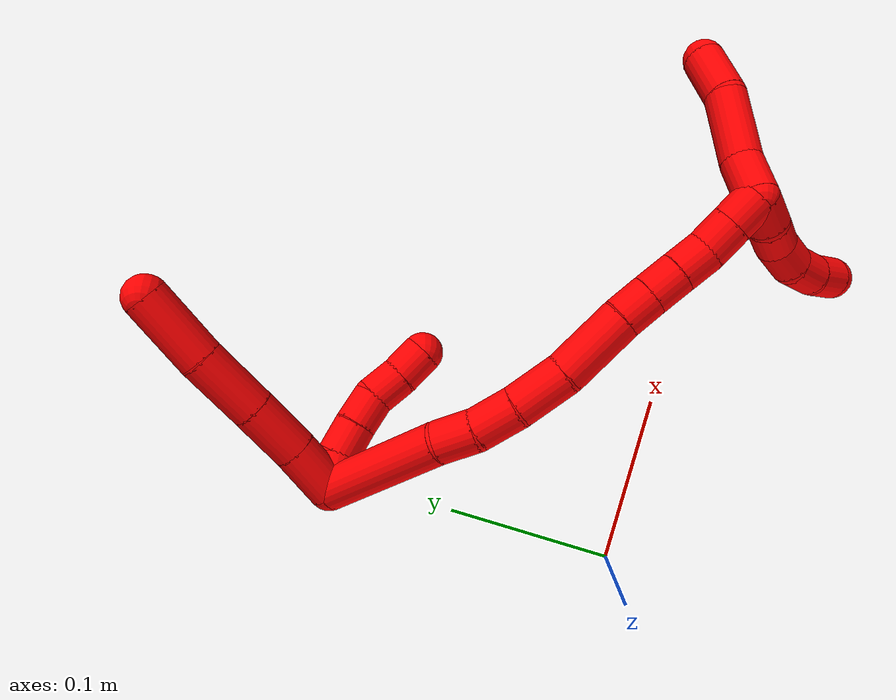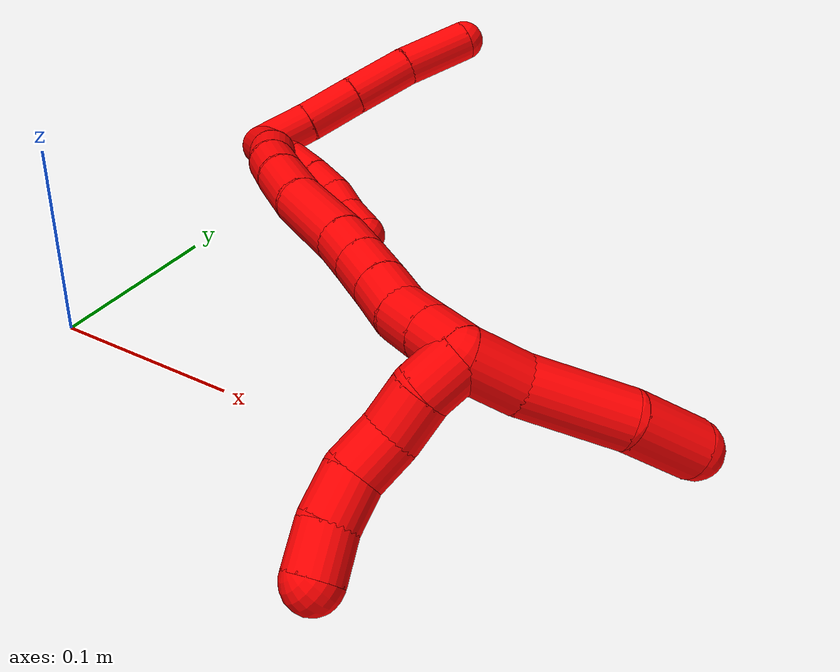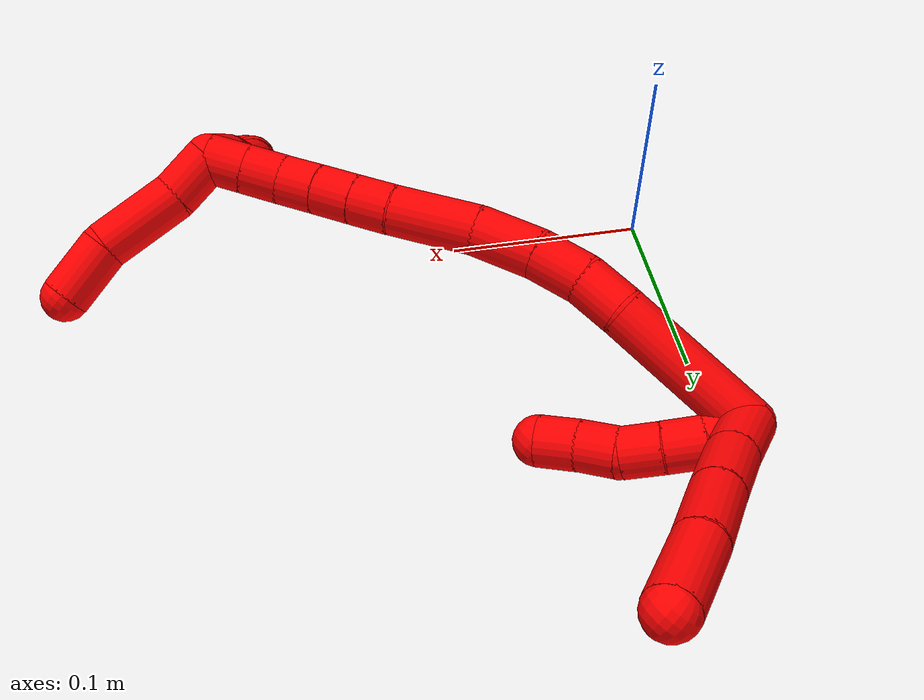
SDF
<sdf version="1.7">
 <world name="default">
  <model name="2">
   <static>0</static>
   <link name="2">
    <collision name="collision-cylinder-e_1_2_8">
     <pose>0.006403 0.013674 -0.005863 -1.97587 0.406387 -0.605814</pose>
     <geometry><cylinder><radius>0.0125</radius><length>0.032394</length></cylinder></geometry>
     <surface>
      <friction><ode><mu>1.16</mu><mu2>1.16</mu2><slip1>0</slip1><slip2>0</slip2></ode></friction>
      <contact><ode><kp>1e+06</kp><kd>1</kd><max_vel>0</max_vel><min_depth>0.001</min_depth></ode></contact>
     </surface>
    </collision>
    <visual name="visual-cylinder-e_1_2_8">
     <pose>0.006403 0.013674 -0.005863 -1.97587 0.406387 -0.605814</pose>
     <geometry><cylinder><radius>0.0125</radius><length>0.032394</length></cylinder></geometry>
     <material><ambient>1 0 0 1</ambient></material>
    </visual>
    <collision name="collision-cylinder-e_2_8_9">
     <pose>0.019117 0.042192 -0.017105 -1.91841 0.380319 -0.535751</pose>
     <geometry><cylinder><radius>0.0125</radius><length>0.034006</length></cylinder></geometry>
     <surface>
      <friction><ode><mu>1.16</mu><mu2>1.16</mu2><slip1>0</slip1><slip2>0</slip2></ode></friction>
      <contact><ode><kp>1e+06</kp><kd>1</kd><max_vel>0</max_vel><min_depth>0.001</min_depth></ode></contact>
     </surface>
    </collision>
    <visual name="visual-cylinder-e_2_8_9">
     <pose>0.019117 0.042192 -0.017105 -1.91841 0.380319 -0.535751</pose>
     <geometry><cylinder><radius>0.0125</radius><length>0.034006</length></cylinder></geometry>
     <material><ambient>1 0 0 1</ambient></material>
    </visual>
    <collision name="collision-cylinder-e_3_9_10">
     <pose>0.032278 0.07453 -0.029032 -1.92903 0.351447 -0.501356</pose>
     <geometry><cylinder><radius>0.0125</radius><length>0.039792</length></cylinder></geometry>
     <surface>
      <friction><ode><mu>1.16</mu><mu2>1.16</mu2><slip1>0</slip1><slip2>0</slip2></ode></friction>
      <contact><ode><kp>1e+06</kp><kd>1</kd><max_vel>0</max_vel><min_depth>0.001</min_depth></ode></contact>
     </surface>
    </collision>
    <visual name="visual-cylinder-e_3_9_10">
     <pose>0.032278 0.07453 -0.029032 -1.92903 0.351447 -0.501356</pose>
     <geometry><cylinder><radius>0.0125</radius><length>0.039792</length></cylinder></geometry>
     <material><ambient>1 0 0 1</ambient></material>
    </visual>
    <collision name="collision-cylinder-e_4_10_6">
     <pose>0.046659 0.110473 -0.044674 -2.02866 0.351022 -0.555441</pose>
     <geometry><cylinder><radius>0.0125</radius><length>0.043807</length></cylinder></geometry>
     <surface>
      <friction><ode><mu>1.16</mu><mu2>1.16</mu2><slip1>0</slip1><slip2>0</slip2></ode></friction>
      <contact><ode><kp>1e+06</kp><kd>1</kd><max_vel>0</max_vel><min_depth>0.001</min_depth></ode></contact>
     </surface>
    </collision>
    <visual name="visual-cylinder-e_4_10_6">
     <pose>0.046659 0.110473 -0.044674 -2.02866 0.351022 -0.555441</pose>
     <geometry><cylinder><radius>0.0125</radius><length>0.043807</length></cylinder></geometry>
     <material><ambient>1 0 0 1</ambient></material>
    </visual>
    <collision name="collision-cylinder-e_1_2_11">
     <pose>0.004643 -5.4e-05 -0.008857 3.13545 0.482796 3.11666</pose>
     <geometry><cylinder><radius>0.0125</radius><length>0.02</length></cylinder></geometry>
     <surface>
      <friction><ode><mu>1.16</mu><mu2>1.16</mu2><slip1>0</slip1><slip2>0</slip2></ode></friction>
      <contact><ode><kp>1e+06</kp><kd>1</kd><max_vel>0</max_vel><min_depth>0.001</min_depth></ode></contact>
     </surface>
    </collision>
    <visual name="visual-cylinder-e_1_2_11">
     <pose>0.004643 -5.4e-05 -0.008857 3.13545 0.482796 3.11666</pose>
     <geometry><cylinder><radius>0.0125</radius><length>0.02</length></cylinder></geometry>
     <material><ambient>1 0 0 1</ambient></material>
    </visual>
    <collision name="collision-cylinder-e_2_11_12">
     <pose>0.015187 -0.002677 -0.025367 2.81786 0.63132 2.21428</pose>
     <geometry><cylinder><radius>0.0125</radius><length>0.02</length></cylinder></geometry>
     <surface>
      <friction><ode><mu>1.16</mu><mu2>1.16</mu2><slip1>0</slip1><slip2>0</slip2></ode></friction>
      <contact><ode><kp>1e+06</kp><kd>1</kd><max_vel>0</max_vel><min_depth>0.001</min_depth></ode></contact>
     </surface>
    </collision>
    <visual name="visual-cylinder-e_2_11_12">
     <pose>0.015187 -0.002677 -0.025367 2.81786 0.63132 2.21428</pose>
     <geometry><cylinder><radius>0.0125</radius><length>0.02</length></cylinder></geometry>
     <material><ambient>1 0 0 1</ambient></material>
    </visual>
    <collision name="collision-cylinder-e_3_12_13">
     <pose>0.026743 -0.008458 -0.040617 2.74147 0.600853 1.9825</pose>
     <geometry><cylinder><radius>0.0125</radius><length>0.02</length></cylinder></geometry>
     <surface>
      <friction><ode><mu>1.16</mu><mu2>1.16</mu2><slip1>0</slip1><slip2>0</slip2></ode></friction>
      <contact><ode><kp>1e+06</kp><kd>1</kd><max_vel>0</max_vel><min_depth>0.001</min_depth></ode></contact>
     </surface>
    </collision>
    <visual name="visual-cylinder-e_3_12_13">
     <pose>0.026743 -0.008458 -0.040617 2.74147 0.600853 1.9825</pose>
     <geometry><cylinder><radius>0.0125</radius><length>0.02</length></cylinder></geometry>
     <material><ambient>1 0 0 1</ambient></material>
    </visual>
    <collision name="collision-cylinder-e_4_13_14">
     <pose>0.038596 -0.017321 -0.053659 2.33767 0.668675 1.37022</pose>
     <geometry><cylinder><radius>0.0125</radius><length>0.02</length></cylinder></geometry>
     <surface>
      <friction><ode><mu>1.16</mu><mu2>1.16</mu2><slip1>0</slip1><slip2>0</slip2></ode></friction>
      <contact><ode><kp>1e+06</kp><kd>1</kd><max_vel>0</max_vel><min_depth>0.001</min_depth></ode></contact>
     </surface>
    </collision>
    <visual name="visual-cylinder-e_4_13_14">
     <pose>0.038596 -0.017321 -0.053659 2.33767 0.668675 1.37022</pose>
     <geometry><cylinder><radius>0.0125</radius><length>0.02</length></cylinder></geometry>
     <material><ambient>1 0 0 1</ambient></material>
    </visual>
    <collision name="collision-cylinder-e_5_14_5">
     <pose>0.051378 -0.02761 -0.065031 2.47747 0.718574 1.65614</pose>
     <geometry><cylinder><radius>0.0125</radius><length>0.02</length></cylinder></geometry>
     <surface>
      <friction><ode><mu>1.16</mu><mu2>1.16</mu2><slip1>0</slip1><slip2>0</slip2></ode></friction>
      <contact><ode><kp>1e+06</kp><kd>1</kd><max_vel>0</max_vel><min_depth>0.001</min_depth></ode></contact>
     </surface>
    </collision>
    <visual name="visual-cylinder-e_5_14_5">
     <pose>0.051378 -0.02761 -0.065031 2.47747 0.718574 1.65614</pose>
     <geometry><cylinder><radius>0.0125</radius><length>0.02</length></cylinder></geometry>
     <material><ambient>1 0 0 1</ambient></material>
    </visual>
    <collision name="collision-cylinder-e_1_2_15">
     <pose>0.033421 -0.018142 0.000836 1.52473 1.07303 1.03299</pose>
     <geometry><cylinder><radius>0.0125</radius><length>0.076074</length></cylinder></geometry>
     <surface>
      <friction><ode><mu>1.16</mu><mu2>1.16</mu2><slip1>0</slip1><slip2>0</slip2></ode></friction>
      <contact><ode><kp>1e+06</kp><kd>1</kd><max_vel>0</max_vel><min_depth>0.001</min_depth></ode></contact>
     </surface>
    </collision>
    <visual name="visual-cylinder-e_1_2_15">
     <pose>0.033421 -0.018142 0.000836 1.52473 1.07303 1.03299</pose>
     <geometry><cylinder><radius>0.0125</radius><length>0.076074</length></cylinder></geometry>
     <material><ambient>1 0 0 1</ambient></material>
    </visual>
    <collision name="collision-cylinder-e_2_15_16">
     <pose>0.075968 -0.043724 0.001283 1.62314 0.886139 0.927374</pose>
     <geometry><cylinder><radius>0.0125</radius><length>0.023561</length></cylinder></geometry>
     <surface>
      <friction><ode><mu>1.16</mu><mu2>1.16</mu2><slip1>0</slip1><slip2>0</slip2></ode></friction>
      <contact><ode><kp>1e+06</kp><kd>1</kd><max_vel>0</max_vel><min_depth>0.001</min_depth></ode></contact>
     </surface>
    </collision>
    <visual name="visual-cylinder-e_2_15_16">
     <pose>0.075968 -0.043724 0.001283 1.62314 0.886139 0.927374</pose>
     <geometry><cylinder><radius>0.0125</radius><length>0.023561</length></cylinder></geometry>
     <material><ambient>1 0 0 1</ambient></material>
    </visual>
    <collision name="collision-cylinder-e_3_16_17">
     <pose>0.095393 -0.058188 -0.001819 1.93926 0.939483 1.27435</pose>
     <geometry><cylinder><radius>0.0125</radius><length>0.025517</length></cylinder></geometry>
     <surface>
      <friction><ode><mu>1.16</mu><mu2>1.16</mu2><slip1>0</slip1><slip2>0</slip2></ode></friction>
      <contact><ode><kp>1e+06</kp><kd>1</kd><max_vel>0</max_vel><min_depth>0.001</min_depth></ode></contact>
     </surface>
    </collision>
    <visual name="visual-cylinder-e_3_16_17">
     <pose>0.095393 -0.058188 -0.001819 1.93926 0.939483 1.27435</pose>
     <geometry><cylinder><radius>0.0125</radius><length>0.025517</length></cylinder></geometry>
     <material><ambient>1 0 0 1</ambient></material>
    </visual>
    <collision name="collision-cylinder-e_4_17_18">
     <pose>0.118062 -0.073583 -0.009755 2.12877 0.897475 1.42982</pose>
     <geometry><cylinder><radius>0.0125</radius><length>0.031645</length></cylinder></geometry>
     <surface>
      <friction><ode><mu>1.16</mu><mu2>1.16</mu2><slip1>0</slip1><slip2>0</slip2></ode></friction>
      <contact><ode><kp>1e+06</kp><kd>1</kd><max_vel>0</max_vel><min_depth>0.001</min_depth></ode></contact>
     </surface>
    </collision>
    <visual name="visual-cylinder-e_4_17_18">
     <pose>0.118062 -0.073583 -0.009755 2.12877 0.897475 1.42982</pose>
     <geometry><cylinder><radius>0.0125</radius><length>0.031645</length></cylinder></geometry>
     <material><ambient>1 0 0 1</ambient></material>
    </visual>
    <collision name="collision-cylinder-e_5_18_19">
     <pose>0.147269 -0.091139 -0.024643 2.38155 0.901027 1.76102</pose>
     <geometry><cylinder><radius>0.0125</radius><length>0.042954</length></cylinder></geometry>
     <surface>
      <friction><ode><mu>1.16</mu><mu2>1.16</mu2><slip1>0</slip1><slip2>0</slip2></ode></friction>
      <contact><ode><kp>1e+06</kp><kd>1</kd><max_vel>0</max_vel><min_depth>0.001</min_depth></ode></contact>
     </surface>
    </collision>
    <visual name="visual-cylinder-e_5_18_19">
     <pose>0.147269 -0.091139 -0.024643 2.38155 0.901027 1.76102</pose>
     <geometry><cylinder><radius>0.0125</radius><length>0.042954</length></cylinder></geometry>
     <material><ambient>1 0 0 1</ambient></material>
    </visual>
    <collision name="collision-cylinder-e_6_19_20">
     <pose>0.171682 -0.105388 -0.03861 2.2752 0.850871 1.55029</pose>
     <geometry><cylinder><radius>0.0125</radius><length>0.020152</length></cylinder></geometry>
     <surface>
      <friction><ode><mu>1.16</mu><mu2>1.16</mu2><slip1>0</slip1><slip2>0</slip2></ode></friction>
      <contact><ode><kp>1e+06</kp><kd>1</kd><max_vel>0</max_vel><min_depth>0.001</min_depth></ode></contact>
     </surface>
    </collision>
    <visual name="visual-cylinder-e_6_19_20">
     <pose>0.171682 -0.105388 -0.03861 2.2752 0.850871 1.55029</pose>
     <geometry><cylinder><radius>0.0125</radius><length>0.020152</length></cylinder></geometry>
     <material><ambient>1 0 0 1</ambient></material>
    </visual>
    <collision name="collision-cylinder-e_7_20_21">
     <pose>0.186736 -0.115618 -0.047127 2.25493 0.84253 1.51282</pose>
     <geometry><cylinder><radius>0.0125</radius><length>0.02004</length></cylinder></geometry>
     <surface>
      <friction><ode><mu>1.16</mu><mu2>1.16</mu2><slip1>0</slip1><slip2>0</slip2></ode></friction>
      <contact><ode><kp>1e+06</kp><kd>1</kd><max_vel>0</max_vel><min_depth>0.001</min_depth></ode></contact>
     </surface>
    </collision>
    <visual name="visual-cylinder-e_7_20_21">
     <pose>0.186736 -0.115618 -0.047127 2.25493 0.84253 1.51282</pose>
     <geometry><cylinder><radius>0.0125</radius><length>0.02004</length></cylinder></geometry>
     <material><ambient>1 0 0 1</ambient></material>
    </visual>
    <collision name="collision-cylinder-e_8_21_22">
     <pose>0.201525 -0.126112 -0.055632 2.24889 0.818729 1.47292</pose>
     <geometry><cylinder><radius>0.0125</radius><length>0.020021</length></cylinder></geometry>
     <surface>
      <friction><ode><mu>1.16</mu><mu2>1.16</mu2><slip1>0</slip1><slip2>0</slip2></ode></friction>
      <contact><ode><kp>1e+06</kp><kd>1</kd><max_vel>0</max_vel><min_depth>0.001</min_depth></ode></contact>
     </surface>
    </collision>
    <visual name="visual-cylinder-e_8_21_22">
     <pose>0.201525 -0.126112 -0.055632 2.24889 0.818729 1.47292</pose>
     <geometry><cylinder><radius>0.0125</radius><length>0.020021</length></cylinder></geometry>
     <material><ambient>1 0 0 1</ambient></material>
    </visual>
    <collision name="collision-cylinder-e_9_22_23">
     <pose>0.217274 -0.134999 -0.063941 2.41659 1.00409 1.93245</pose>
     <geometry><cylinder><radius>0.0125</radius><length>0.020005</length></cylinder></geometry>
     <surface>
      <friction><ode><mu>1.16</mu><mu2>1.16</mu2><slip1>0</slip1><slip2>0</slip2></ode></friction>
      <contact><ode><kp>1e+06</kp><kd>1</kd><max_vel>0</max_vel><min_depth>0.001</min_depth></ode></contact>
     </surface>
    </collision>
    <visual name="visual-cylinder-e_9_22_23">
     <pose>0.217274 -0.134999 -0.063941 2.41659 1.00409 1.93245</pose>
     <geometry><cylinder><radius>0.0125</radius><length>0.020005</length></cylinder></geometry>
     <material><ambient>1 0 0 1</ambient></material>
    </visual>
    <collision name="collision-cylinder-e_10_23_1">
     <pose>0.234172 -0.142092 -0.071993 2.42232 1.00598 1.94264</pose>
     <geometry><cylinder><radius>0.0125</radius><length>0.02003</length></cylinder></geometry>
     <surface>
      <friction><ode><mu>1.16</mu><mu2>1.16</mu2><slip1>0</slip1><slip2>0</slip2></ode></friction>
      <contact><ode><kp>1e+06</kp><kd>1</kd><max_vel>0</max_vel><min_depth>0.001</min_depth></ode></contact>
     </surface>
    </collision>
    <visual name="visual-cylinder-e_10_23_1">
     <pose>0.234172 -0.142092 -0.071993 2.42232 1.00598 1.94264</pose>
     <geometry><cylinder><radius>0.0125</radius><length>0.02003</length></cylinder></geometry>
     <material><ambient>1 0 0 1</ambient></material>
    </visual>
    <collision name="collision-cylinder-e_1_1_24">
     <pose>0.237168 -0.153942 -0.075053 1.4544 -0.578084 -0.51739</pose>
     <geometry><cylinder><radius>0.0125</radius><length>0.02</length></cylinder></geometry>
     <surface>
      <friction><ode><mu>1.16</mu><mu2>1.16</mu2><slip1>0</slip1><slip2>0</slip2></ode></friction>
      <contact><ode><kp>1e+06</kp><kd>1</kd><max_vel>0</max_vel><min_depth>0.001</min_depth></ode></contact>
     </surface>
    </collision>
    <visual name="visual-cylinder-e_1_1_24">
     <pose>0.237168 -0.153942 -0.075053 1.4544 -0.578084 -0.51739</pose>
     <geometry><cylinder><radius>0.0125</radius><length>0.02</length></cylinder></geometry>
     <material><ambient>1 0 0 1</ambient></material>
    </visual>
    <collision name="collision-cylinder-e_2_24_25">
     <pose>0.226208 -0.170494 -0.075497 1.74119 -0.581801 -0.682788</pose>
     <geometry><cylinder><radius>0.0125</radius><length>0.02</length></cylinder></geometry>
     <surface>
      <friction><ode><mu>1.16</mu><mu2>1.16</mu2><slip1>0</slip1><slip2>0</slip2></ode></friction>
      <contact><ode><kp>1e+06</kp><kd>1</kd><max_vel>0</max_vel><min_depth>0.001</min_depth></ode></contact>
     </surface>
    </collision>
    <visual name="visual-cylinder-e_2_24_25">
     <pose>0.226208 -0.170494 -0.075497 1.74119 -0.581801 -0.682788</pose>
     <geometry><cylinder><radius>0.0125</radius><length>0.02</length></cylinder></geometry>
     <material><ambient>1 0 0 1</ambient></material>
    </visual>
    <collision name="collision-cylinder-e_3_25_26">
     <pose>0.216934 -0.187955 -0.076151 1.48831 -0.387538 -0.357497</pose>
     <geometry><cylinder><radius>0.0125</radius><length>0.02</length></cylinder></geometry>
     <surface>
      <friction><ode><mu>1.16</mu><mu2>1.16</mu2><slip1>0</slip1><slip2>0</slip2></ode></friction>
      <contact><ode><kp>1e+06</kp><kd>1</kd><max_vel>0</max_vel><min_depth>0.001</min_depth></ode></contact>
     </surface>
    </collision>
    <visual name="visual-cylinder-e_3_25_26">
     <pose>0.216934 -0.187955 -0.076151 1.48831 -0.387538 -0.357497</pose>
     <geometry><cylinder><radius>0.0125</radius><length>0.02</length></cylinder></geometry>
     <material><ambient>1 0 0 1</ambient></material>
    </visual>
    <collision name="collision-cylinder-e_4_26_27">
     <pose>0.211748 -0.206989 -0.076744 1.70817 -0.141166 -0.161939</pose>
     <geometry><cylinder><radius>0.0125</radius><length>0.02</length></cylinder></geometry>
     <surface>
      <friction><ode><mu>1.16</mu><mu2>1.16</mu2><slip1>0</slip1><slip2>0</slip2></ode></friction>
      <contact><ode><kp>1e+06</kp><kd>1</kd><max_vel>0</max_vel><min_depth>0.001</min_depth></ode></contact>
     </surface>
    </collision>
    <visual name="visual-cylinder-e_4_26_27">
     <pose>0.211748 -0.206989 -0.076744 1.70817 -0.141166 -0.161939</pose>
     <geometry><cylinder><radius>0.0125</radius><length>0.02</length></cylinder></geometry>
     <material><ambient>1 0 0 1</ambient></material>
    </visual>
    <collision name="collision-cylinder-e_5_27_4">
     <pose>0.210261 -0.226329 -0.08112 1.87766 -0.007957 -0.010869</pose>
     <geometry><cylinder><radius>0.0125</radius><length>0.02</length></cylinder></geometry>
     <surface>
      <friction><ode><mu>1.16</mu><mu2>1.16</mu2><slip1>0</slip1><slip2>0</slip2></ode></friction>
      <contact><ode><kp>1e+06</kp><kd>1</kd><max_vel>0</max_vel><min_depth>0.001</min_depth></ode></contact>
     </surface>
    </collision>
    <visual name="visual-cylinder-e_5_27_4">
     <pose>0.210261 -0.226329 -0.08112 1.87766 -0.007957 -0.010869</pose>
     <geometry><cylinder><radius>0.0125</radius><length>0.02</length></cylinder></geometry>
     <material><ambient>1 0 0 1</ambient></material>
    </visual>
    <collision name="collision-cylinder-e_1_1_28">
     <pose>0.244315 -0.142807 -0.088319 -2.9164 0.132627 -1.0621</pose>
     <geometry><cylinder><radius>0.0125</radius><length>0.025447</length></cylinder></geometry>
     <surface>
      <friction><ode><mu>1.16</mu><mu2>1.16</mu2><slip1>0</slip1><slip2>0</slip2></ode></friction>
      <contact><ode><kp>1e+06</kp><kd>1</kd><max_vel>0</max_vel><min_depth>0.001</min_depth></ode></contact>
     </surface>
    </collision>
    <visual name="visual-cylinder-e_1_1_28">
     <pose>0.244315 -0.142807 -0.088319 -2.9164 0.132627 -1.0621</pose>
     <geometry><cylinder><radius>0.0125</radius><length>0.025447</length></cylinder></geometry>
     <material><ambient>1 0 0 1</ambient></material>
    </visual>
    <collision name="collision-cylinder-e_2_28_29">
     <pose>0.253378 -0.134247 -0.120031 -2.85399 0.349535 -1.76788</pose>
     <geometry><cylinder><radius>0.0125</radius><length>0.043107</length></cylinder></geometry>
     <surface>
      <friction><ode><mu>1.16</mu><mu2>1.16</mu2><slip1>0</slip1><slip2>0</slip2></ode></friction>
      <contact><ode><kp>1e+06</kp><kd>1</kd><max_vel>0</max_vel><min_depth>0.001</min_depth></ode></contact>
     </surface>
    </collision>
    <visual name="visual-cylinder-e_2_28_29">
     <pose>0.253378 -0.134247 -0.120031 -2.85399 0.349535 -1.76788</pose>
     <geometry><cylinder><radius>0.0125</radius><length>0.043107</length></cylinder></geometry>
     <material><ambient>1 0 0 1</ambient></material>
    </visual>
    <collision name="collision-cylinder-e_3_29_3">
     <pose>0.26172 -0.124196 -0.15454 -2.86357 0.061136 -0.430317</pose>
     <geometry><cylinder><radius>0.0125</radius><length>0.031446</length></cylinder></geometry>
     <surface>
      <friction><ode><mu>1.16</mu><mu2>1.16</mu2><slip1>0</slip1><slip2>0</slip2></ode></friction>
      <contact><ode><kp>1e+06</kp><kd>1</kd><max_vel>0</max_vel><min_depth>0.001</min_depth></ode></contact>
     </surface>
    </collision>
    <visual name="visual-cylinder-e_3_29_3">
     <pose>0.26172 -0.124196 -0.15454 -2.86357 0.061136 -0.430317</pose>
     <geometry><cylinder><radius>0.0125</radius><length>0.031446</length></cylinder></geometry>
     <material><ambient>1 0 0 1</ambient></material>
    </visual>
    <collision name="collision-sphere-3">
     <pose>0.262681 -0.119889 -0.169631 0 -0 0</pose>
     <geometry><sphere><radius>0.0125</radius></sphere></geometry>
     <surface>
      <friction><ode><mu>1.16</mu><mu2>1.16</mu2><slip1>0</slip1><slip2>0</slip2></ode></friction>
      <contact><ode><kp>1e+06</kp><kd>1</kd><max_vel>0</max_vel><min_depth>0.001</min_depth></ode></contact>
     </surface>
    </collision>
    <visual name="visual-sphere-3">
     <pose>0.262681 -0.119889 -0.169631 0 -0 0</pose>
     <geometry><sphere><radius>0.0125</radius></sphere></geometry>
     <material><ambient>1 0 0 1</ambient></material>
    </visual>
    <collision name="collision-sphere-29">
     <pose>0.26076 -0.128503 -0.13945 0 -0 0</pose>
     <geometry><sphere><radius>0.0125</radius></sphere></geometry>
     <surface>
      <friction><ode><mu>1.16</mu><mu2>1.16</mu2><slip1>0</slip1><slip2>0</slip2></ode></friction>
      <contact><ode><kp>1e+06</kp><kd>1</kd><max_vel>0</max_vel><min_depth>0.001</min_depth></ode></contact>
     </surface>
    </collision>
    <visual name="visual-sphere-29">
     <pose>0.26076 -0.128503 -0.13945 0 -0 0</pose>
     <geometry><sphere><radius>0.0125</radius></sphere></geometry>
     <material><ambient>1 0 0 1</ambient></material>
    </visual>
    <collision name="collision-sphere-28">
     <pose>0.245997 -0.139991 -0.100613 0 -0 0</pose>
     <geometry><sphere><radius>0.0125</radius></sphere></geometry>
     <surface>
      <friction><ode><mu>1.16</mu><mu2>1.16</mu2><slip1>0</slip1><slip2>0</slip2></ode></friction>
      <contact><ode><kp>1e+06</kp><kd>1</kd><max_vel>0</max_vel><min_depth>0.001</min_depth></ode></contact>
     </surface>
    </collision>
    <visual name="visual-sphere-28">
     <pose>0.245997 -0.139991 -0.100613 0 -0 0</pose>
     <geometry><sphere><radius>0.0125</radius></sphere></geometry>
     <material><ambient>1 0 0 1</ambient></material>
    </visual>
    <collision name="collision-sphere-4">
     <pose>0.210182 -0.235861 -0.084141 0 -0 0</pose>
     <geometry><sphere><radius>0.0125</radius></sphere></geometry>
     <surface>
      <friction><ode><mu>1.16</mu><mu2>1.16</mu2><slip1>0</slip1><slip2>0</slip2></ode></friction>
      <contact><ode><kp>1e+06</kp><kd>1</kd><max_vel>0</max_vel><min_depth>0.001</min_depth></ode></contact>
     </surface>
    </collision>
    <visual name="visual-sphere-4">
     <pose>0.210182 -0.235861 -0.084141 0 -0 0</pose>
     <geometry><sphere><radius>0.0125</radius></sphere></geometry>
     <material><ambient>1 0 0 1</ambient></material>
    </visual>
    <collision name="collision-sphere-27">
     <pose>0.210341 -0.216796 -0.0781 0 -0 0</pose>
     <geometry><sphere><radius>0.0125</radius></sphere></geometry>
     <surface>
      <friction><ode><mu>1.16</mu><mu2>1.16</mu2><slip1>0</slip1><slip2>0</slip2></ode></friction>
      <contact><ode><kp>1e+06</kp><kd>1</kd><max_vel>0</max_vel><min_depth>0.001</min_depth></ode></contact>
     </surface>
    </collision>
    <visual name="visual-sphere-27">
     <pose>0.210341 -0.216796 -0.0781 0 -0 0</pose>
     <geometry><sphere><radius>0.0125</radius></sphere></geometry>
     <material><ambient>1 0 0 1</ambient></material>
    </visual>
    <collision name="collision-sphere-26">
     <pose>0.213155 -0.197182 -0.075388 0 -0 0</pose>
     <geometry><sphere><radius>0.0125</radius></sphere></geometry>
     <surface>
      <friction><ode><mu>1.16</mu><mu2>1.16</mu2><slip1>0</slip1><slip2>0</slip2></ode></friction>
      <contact><ode><kp>1e+06</kp><kd>1</kd><max_vel>0</max_vel><min_depth>0.001</min_depth></ode></contact>
     </surface>
    </collision>
    <visual name="visual-sphere-26">
     <pose>0.213155 -0.197182 -0.075388 0 -0 0</pose>
     <geometry><sphere><radius>0.0125</radius></sphere></geometry>
     <material><ambient>1 0 0 1</ambient></material>
    </visual>
    <collision name="collision-sphere-25">
     <pose>0.220713 -0.178728 -0.076914 0 -0 0</pose>
     <geometry><sphere><radius>0.0125</radius></sphere></geometry>
     <surface>
      <friction><ode><mu>1.16</mu><mu2>1.16</mu2><slip1>0</slip1><slip2>0</slip2></ode></friction>
      <contact><ode><kp>1e+06</kp><kd>1</kd><max_vel>0</max_vel><min_depth>0.001</min_depth></ode></contact>
     </surface>
    </collision>
    <visual name="visual-sphere-25">
     <pose>0.220713 -0.178728 -0.076914 0 -0 0</pose>
     <geometry><sphere><radius>0.0125</radius></sphere></geometry>
     <material><ambient>1 0 0 1</ambient></material>
    </visual>
    <collision name="collision-sphere-24">
     <pose>0.231704 -0.16226 -0.07408 0 -0 0</pose>
     <geometry><sphere><radius>0.0125</radius></sphere></geometry>
     <surface>
      <friction><ode><mu>1.16</mu><mu2>1.16</mu2><slip1>0</slip1><slip2>0</slip2></ode></friction>
      <contact><ode><kp>1e+06</kp><kd>1</kd><max_vel>0</max_vel><min_depth>0.001</min_depth></ode></contact>
     </surface>
    </collision>
    <visual name="visual-sphere-24">
     <pose>0.231704 -0.16226 -0.07408 0 -0 0</pose>
     <geometry><sphere><radius>0.0125</radius></sphere></geometry>
     <material><ambient>1 0 0 1</ambient></material>
    </visual>
    <collision name="collision-sphere-1">
     <pose>0.242632 -0.145624 -0.076026 0 -0 0</pose>
     <geometry><sphere><radius>0.0125</radius></sphere></geometry>
     <surface>
      <friction><ode><mu>1.16</mu><mu2>1.16</mu2><slip1>0</slip1><slip2>0</slip2></ode></friction>
      <contact><ode><kp>1e+06</kp><kd>1</kd><max_vel>0</max_vel><min_depth>0.001</min_depth></ode></contact>
     </surface>
    </collision>
    <visual name="visual-sphere-1">
     <pose>0.242632 -0.145624 -0.076026 0 -0 0</pose>
     <geometry><sphere><radius>0.0125</radius></sphere></geometry>
     <material><ambient>1 0 0 1</ambient></material>
    </visual>
    <collision name="collision-sphere-23">
     <pose>0.225712 -0.13856 -0.06796 0 -0 0</pose>
     <geometry><sphere><radius>0.0125</radius></sphere></geometry>
     <surface>
      <friction><ode><mu>1.16</mu><mu2>1.16</mu2><slip1>0</slip1><slip2>0</slip2></ode></friction>
      <contact><ode><kp>1e+06</kp><kd>1</kd><max_vel>0</max_vel><min_depth>0.001</min_depth></ode></contact>
     </surface>
    </collision>
    <visual name="visual-sphere-23">
     <pose>0.225712 -0.13856 -0.06796 0 -0 0</pose>
     <geometry><sphere><radius>0.0125</radius></sphere></geometry>
     <material><ambient>1 0 0 1</ambient></material>
    </visual>
    <collision name="collision-sphere-22">
     <pose>0.208835 -0.131438 -0.059921 0 -0 0</pose>
     <geometry><sphere><radius>0.0125</radius></sphere></geometry>
     <surface>
      <friction><ode><mu>1.16</mu><mu2>1.16</mu2><slip1>0</slip1><slip2>0</slip2></ode></friction>
      <contact><ode><kp>1e+06</kp><kd>1</kd><max_vel>0</max_vel><min_depth>0.001</min_depth></ode></contact>
     </surface>
    </collision>
    <visual name="visual-sphere-22">
     <pose>0.208835 -0.131438 -0.059921 0 -0 0</pose>
     <geometry><sphere><radius>0.0125</radius></sphere></geometry>
     <material><ambient>1 0 0 1</ambient></material>
    </visual>
    <collision name="collision-sphere-21">
     <pose>0.194214 -0.120787 -0.051342 0 -0 0</pose>
     <geometry><sphere><radius>0.0125</radius></sphere></geometry>
     <surface>
      <friction><ode><mu>1.16</mu><mu2>1.16</mu2><slip1>0</slip1><slip2>0</slip2></ode></friction>
      <contact><ode><kp>1e+06</kp><kd>1</kd><max_vel>0</max_vel><min_depth>0.001</min_depth></ode></contact>
     </surface>
    </collision>
    <visual name="visual-sphere-21">
     <pose>0.194214 -0.120787 -0.051342 0 -0 0</pose>
     <geometry><sphere><radius>0.0125</radius></sphere></geometry>
     <material><ambient>1 0 0 1</ambient></material>
    </visual>
    <collision name="collision-sphere-11">
     <pose>0.009285 -0.000109 -0.017714 0 -0 0</pose>
     <geometry><sphere><radius>0.0125</radius></sphere></geometry>
     <surface>
      <friction><ode><mu>1.16</mu><mu2>1.16</mu2><slip1>0</slip1><slip2>0</slip2></ode></friction>
      <contact><ode><kp>1e+06</kp><kd>1</kd><max_vel>0</max_vel><min_depth>0.001</min_depth></ode></contact>
     </surface>
    </collision>
    <visual name="visual-sphere-11">
     <pose>0.009285 -0.000109 -0.017714 0 -0 0</pose>
     <geometry><sphere><radius>0.0125</radius></sphere></geometry>
     <material><ambient>1 0 0 1</ambient></material>
    </visual>
    <collision name="collision-sphere-6">
     <pose>0.054191 0.128923 -0.053765 0 -0 0</pose>
     <geometry><sphere><radius>0.0125</radius></sphere></geometry>
     <surface>
      <friction><ode><mu>1.16</mu><mu2>1.16</mu2><slip1>0</slip1><slip2>0</slip2></ode></friction>
      <contact><ode><kp>1e+06</kp><kd>1</kd><max_vel>0</max_vel><min_depth>0.001</min_depth></ode></contact>
     </surface>
    </collision>
    <visual name="visual-sphere-6">
     <pose>0.054191 0.128923 -0.053765 0 -0 0</pose>
     <geometry><sphere><radius>0.0125</radius></sphere></geometry>
     <material><ambient>1 0 0 1</ambient></material>
    </visual>
    <collision name="collision-sphere-10">
     <pose>0.039128 0.092024 -0.035582 0 -0 0</pose>
     <geometry><sphere><radius>0.0125</radius></sphere></geometry>
     <surface>
      <friction><ode><mu>1.16</mu><mu2>1.16</mu2><slip1>0</slip1><slip2>0</slip2></ode></friction>
      <contact><ode><kp>1e+06</kp><kd>1</kd><max_vel>0</max_vel><min_depth>0.001</min_depth></ode></contact>
     </surface>
    </collision>
    <visual name="visual-sphere-10">
     <pose>0.039128 0.092024 -0.035582 0 -0 0</pose>
     <geometry><sphere><radius>0.0125</radius></sphere></geometry>
     <material><ambient>1 0 0 1</ambient></material>
    </visual>
    <collision name="collision-sphere-9">
     <pose>0.025429 0.057036 -0.022483 0 -0 0</pose>
     <geometry><sphere><radius>0.0125</radius></sphere></geometry>
     <surface>
      <friction><ode><mu>1.16</mu><mu2>1.16</mu2><slip1>0</slip1><slip2>0</slip2></ode></friction>
      <contact><ode><kp>1e+06</kp><kd>1</kd><max_vel>0</max_vel><min_depth>0.001</min_depth></ode></contact>
     </surface>
    </collision>
    <visual name="visual-sphere-9">
     <pose>0.025429 0.057036 -0.022483 0 -0 0</pose>
     <geometry><sphere><radius>0.0125</radius></sphere></geometry>
     <material><ambient>1 0 0 1</ambient></material>
    </visual>
    <collision name="collision-sphere-2">
     <geometry><sphere><radius>0.0125</radius></sphere></geometry>
     <surface>
      <friction><ode><mu>1.16</mu><mu2>1.16</mu2><slip1>0</slip1><slip2>0</slip2></ode></friction>
      <contact><ode><kp>1e+06</kp><kd>1</kd><max_vel>0</max_vel><min_depth>0.001</min_depth></ode></contact>
     </surface>
    </collision>
    <visual name="visual-sphere-2">
     <geometry><sphere><radius>0.0125</radius></sphere></geometry>
     <material><ambient>1 0 0 1</ambient></material>
    </visual>
    <collision name="collision-sphere-19">
     <pose>0.164106 -0.100325 -0.034307 0 -0 0</pose>
     <geometry><sphere><radius>0.0125</radius></sphere></geometry>
     <surface>
      <friction><ode><mu>1.16</mu><mu2>1.16</mu2><slip1>0</slip1><slip2>0</slip2></ode></friction>
      <contact><ode><kp>1e+06</kp><kd>1</kd><max_vel>0</max_vel><min_depth>0.001</min_depth></ode></contact>
     </surface>
    </collision>
    <visual name="visual-sphere-19">
     <pose>0.164106 -0.100325 -0.034307 0 -0 0</pose>
     <geometry><sphere><radius>0.0125</radius></sphere></geometry>
     <material><ambient>1 0 0 1</ambient></material>
    </visual>
    <collision name="collision-sphere-8">
     <pose>0.012805 0.027348 -0.011726 0 -0 0</pose>
     <geometry><sphere><radius>0.0125</radius></sphere></geometry>
     <surface>
      <friction><ode><mu>1.16</mu><mu2>1.16</mu2><slip1>0</slip1><slip2>0</slip2></ode></friction>
      <contact><ode><kp>1e+06</kp><kd>1</kd><max_vel>0</max_vel><min_depth>0.001</min_depth></ode></contact>
     </surface>
    </collision>
    <visual name="visual-sphere-8">
     <pose>0.012805 0.027348 -0.011726 0 -0 0</pose>
     <geometry><sphere><radius>0.0125</radius></sphere></geometry>
     <material><ambient>1 0 0 1</ambient></material>
    </visual>
    <collision name="collision-sphere-12">
     <pose>0.021089 -0.005245 -0.03302 0 -0 0</pose>
     <geometry><sphere><radius>0.0125</radius></sphere></geometry>
     <surface>
      <friction><ode><mu>1.16</mu><mu2>1.16</mu2><slip1>0</slip1><slip2>0</slip2></ode></friction>
      <contact><ode><kp>1e+06</kp><kd>1</kd><max_vel>0</max_vel><min_depth>0.001</min_depth></ode></contact>
     </surface>
    </collision>
    <visual name="visual-sphere-12">
     <pose>0.021089 -0.005245 -0.03302 0 -0 0</pose>
     <geometry><sphere><radius>0.0125</radius></sphere></geometry>
     <material><ambient>1 0 0 1</ambient></material>
    </visual>
    <collision name="collision-sphere-13">
     <pose>0.032396 -0.011671 -0.048214 0 -0 0</pose>
     <geometry><sphere><radius>0.0125</radius></sphere></geometry>
     <surface>
      <friction><ode><mu>1.16</mu><mu2>1.16</mu2><slip1>0</slip1><slip2>0</slip2></ode></friction>
      <contact><ode><kp>1e+06</kp><kd>1</kd><max_vel>0</max_vel><min_depth>0.001</min_depth></ode></contact>
     </surface>
    </collision>
    <visual name="visual-sphere-13">
     <pose>0.032396 -0.011671 -0.048214 0 -0 0</pose>
     <geometry><sphere><radius>0.0125</radius></sphere></geometry>
     <material><ambient>1 0 0 1</ambient></material>
    </visual>
    <collision name="collision-sphere-14">
     <pose>0.044795 -0.022971 -0.059103 0 -0 0</pose>
     <geometry><sphere><radius>0.0125</radius></sphere></geometry>
     <surface>
      <friction><ode><mu>1.16</mu><mu2>1.16</mu2><slip1>0</slip1><slip2>0</slip2></ode></friction>
      <contact><ode><kp>1e+06</kp><kd>1</kd><max_vel>0</max_vel><min_depth>0.001</min_depth></ode></contact>
     </surface>
    </collision>
    <visual name="visual-sphere-14">
     <pose>0.044795 -0.022971 -0.059103 0 -0 0</pose>
     <geometry><sphere><radius>0.0125</radius></sphere></geometry>
     <material><ambient>1 0 0 1</ambient></material>
    </visual>
    <collision name="collision-sphere-5">
     <pose>0.057961 -0.03225 -0.070958 0 -0 0</pose>
     <geometry><sphere><radius>0.0125</radius></sphere></geometry>
     <surface>
      <friction><ode><mu>1.16</mu><mu2>1.16</mu2><slip1>0</slip1><slip2>0</slip2></ode></friction>
      <contact><ode><kp>1e+06</kp><kd>1</kd><max_vel>0</max_vel><min_depth>0.001</min_depth></ode></contact>
     </surface>
    </collision>
    <visual name="visual-sphere-5">
     <pose>0.057961 -0.03225 -0.070958 0 -0 0</pose>
     <geometry><sphere><radius>0.0125</radius></sphere></geometry>
     <material><ambient>1 0 0 1</ambient></material>
    </visual>
    <collision name="collision-sphere-15">
     <pose>0.066843 -0.036284 0.001673 0 -0 0</pose>
     <geometry><sphere><radius>0.0125</radius></sphere></geometry>
     <surface>
      <friction><ode><mu>1.16</mu><mu2>1.16</mu2><slip1>0</slip1><slip2>0</slip2></ode></friction>
      <contact><ode><kp>1e+06</kp><kd>1</kd><max_vel>0</max_vel><min_depth>0.001</min_depth></ode></contact>
     </surface>
    </collision>
    <visual name="visual-sphere-15">
     <pose>0.066843 -0.036284 0.001673 0 -0 0</pose>
     <geometry><sphere><radius>0.0125</radius></sphere></geometry>
     <material><ambient>1 0 0 1</ambient></material>
    </visual>
    <collision name="collision-sphere-16">
     <pose>0.085094 -0.051163 0.000893 0 -0 0</pose>
     <geometry><sphere><radius>0.0125</radius></sphere></geometry>
     <surface>
      <friction><ode><mu>1.16</mu><mu2>1.16</mu2><slip1>0</slip1><slip2>0</slip2></ode></friction>
      <contact><ode><kp>1e+06</kp><kd>1</kd><max_vel>0</max_vel><min_depth>0.001</min_depth></ode></contact>
     </surface>
    </collision>
    <visual name="visual-sphere-16">
     <pose>0.085094 -0.051163 0.000893 0 -0 0</pose>
     <geometry><sphere><radius>0.0125</radius></sphere></geometry>
     <material><ambient>1 0 0 1</ambient></material>
    </visual>
    <collision name="collision-sphere-17">
     <pose>0.105693 -0.065213 -0.004531 0 -0 0</pose>
     <geometry><sphere><radius>0.0125</radius></sphere></geometry>
     <surface>
      <friction><ode><mu>1.16</mu><mu2>1.16</mu2><slip1>0</slip1><slip2>0</slip2></ode></friction>
      <contact><ode><kp>1e+06</kp><kd>1</kd><max_vel>0</max_vel><min_depth>0.001</min_depth></ode></contact>
     </surface>
    </collision>
    <visual name="visual-sphere-17">
     <pose>0.105693 -0.065213 -0.004531 0 -0 0</pose>
     <geometry><sphere><radius>0.0125</radius></sphere></geometry>
     <material><ambient>1 0 0 1</ambient></material>
    </visual>
    <collision name="collision-sphere-18">
     <pose>0.130431 -0.081954 -0.014979 0 -0 0</pose>
     <geometry><sphere><radius>0.0125</radius></sphere></geometry>
     <surface>
      <friction><ode><mu>1.16</mu><mu2>1.16</mu2><slip1>0</slip1><slip2>0</slip2></ode></friction>
      <contact><ode><kp>1e+06</kp><kd>1</kd><max_vel>0</max_vel><min_depth>0.001</min_depth></ode></contact>
     </surface>
    </collision>
    <visual name="visual-sphere-18">
     <pose>0.130431 -0.081954 -0.014979 0 -0 0</pose>
     <geometry><sphere><radius>0.0125</radius></sphere></geometry>
     <material><ambient>1 0 0 1</ambient></material>
    </visual>
    <collision name="collision-sphere-20">
     <pose>0.179258 -0.11045 -0.042912 0 -0 0</pose>
     <geometry><sphere><radius>0.0125</radius></sphere></geometry>
     <surface>
      <friction><ode><mu>1.16</mu><mu2>1.16</mu2><slip1>0</slip1><slip2>0</slip2></ode></friction>
      <contact><ode><kp>1e+06</kp><kd>1</kd><max_vel>0</max_vel><min_depth>0.001</min_depth></ode></contact>
     </surface>
    </collision>
    <visual name="visual-sphere-20">
     <pose>0.179258 -0.11045 -0.042912 0 -0 0</pose>
     <geometry><sphere><radius>0.0125</radius></sphere></geometry>
     <material><ambient>1 0 0 1</ambient></material>
    </visual>
    <inertial>
     <pose>0.121913 -0.061775 -0.046139 0 -0 0</pose>
     <mass>0.75</mass>
     <inertia><ixx>7.2e-05</ixx><ixy>0</ixy><ixz>0</ixz><iyy>4.6e-05</iyy><iyz>0</iyz><izz>-7.6e-05</izz></inertia>
    </inertial>
   </link>
   <pose>-0.000647 0.170832 0.038476 0.541827 -0.654437 -0.378958</pose>
  </model>
 </world>
</sdf>
